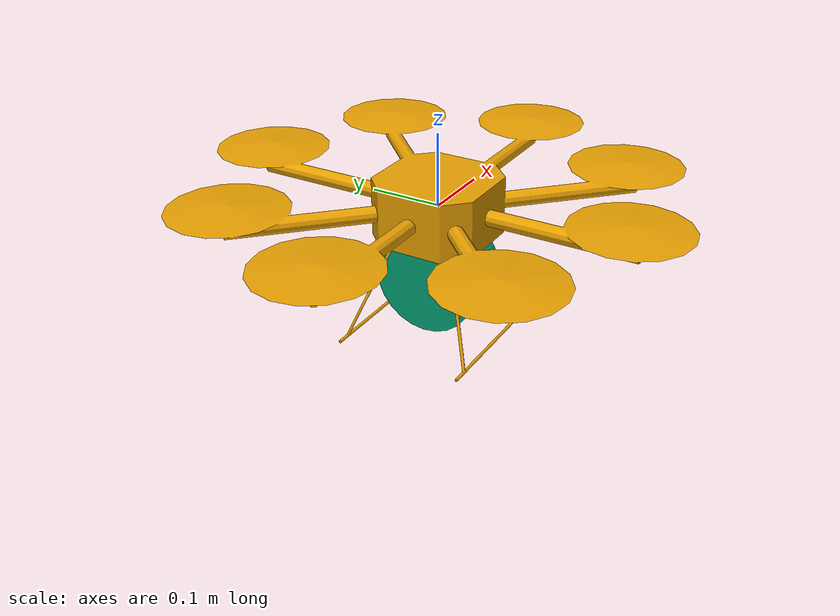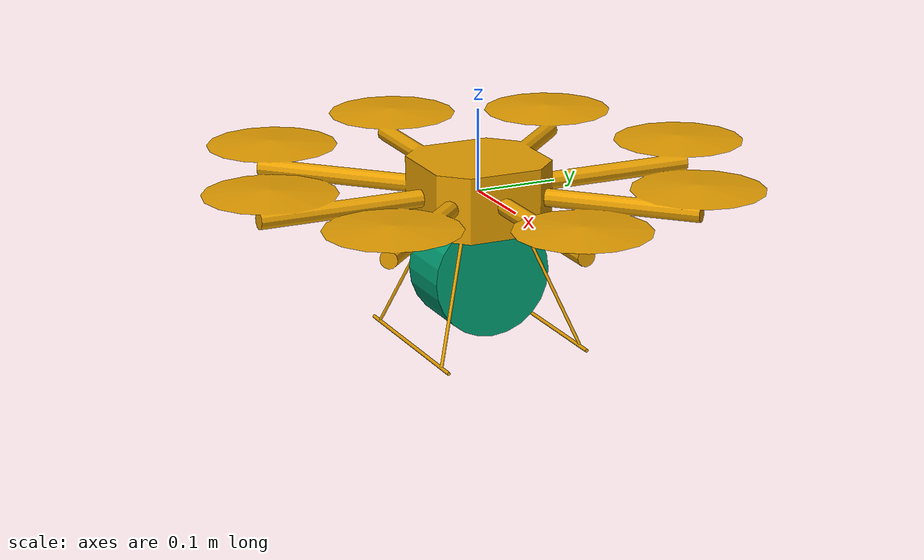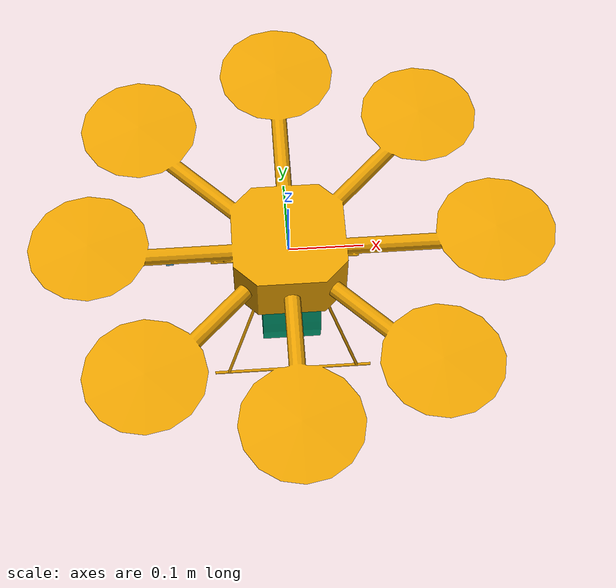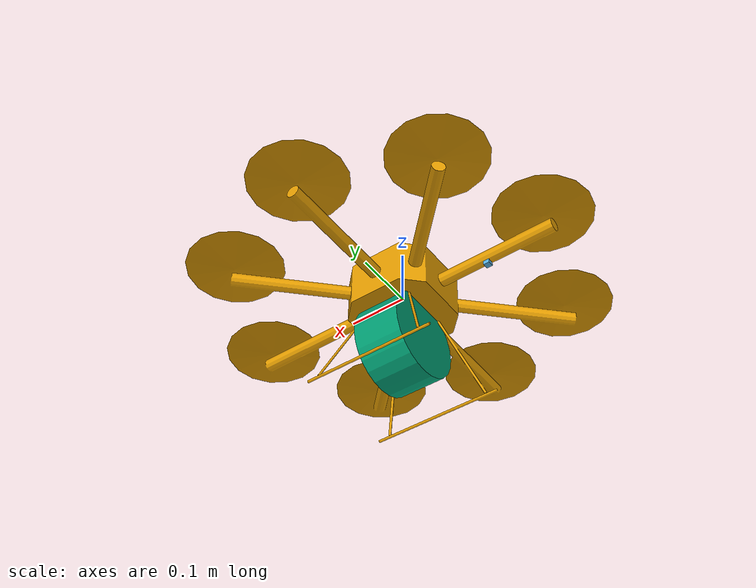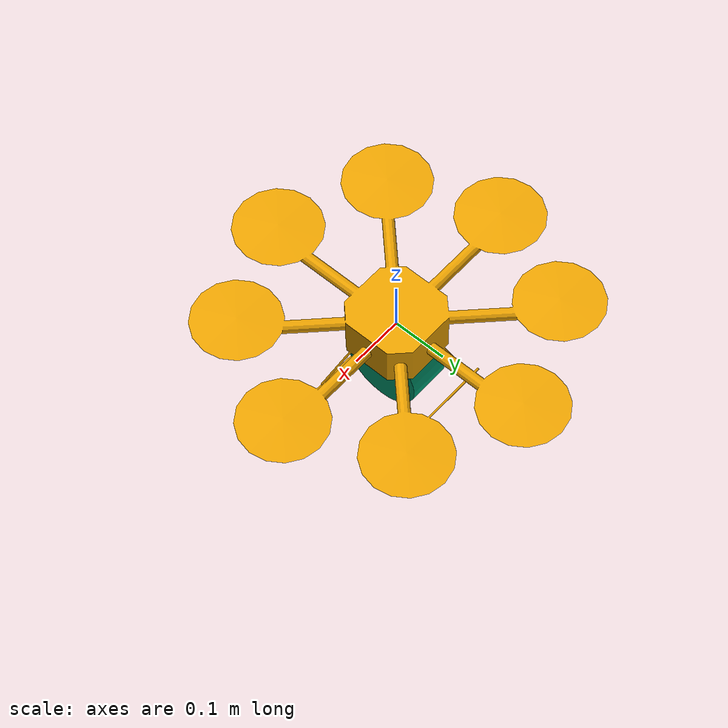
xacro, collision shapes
<?xml version="1.0"?>

<robot name="octorotor" xmlns:xacro="http://www.ros.org/wiki/xacro">

    <xacro:property name="M_PI" value="3.1415926535897931" />

    <!-- Included URDF Files -->
    <xacro:include filename="$(find hector_octorotor_description)/urdf/octorotor_base.urdf.xacro" />

    <!-- Instantiate octorotor_base_macro once (has no parameters atm) -->
    <xacro:octorotor_base_macro />

    <!-- Hokuyo UTM-30LX mounted upside down below the octorotor body -->
    <xacro:include filename="$(find hector_sensors_description)/urdf/hokuyo_utm30lx.urdf.xacro" />
    <xacro:hokuyo_utm30lx name="laser0" parent="base_link" ros_topic="scan" update_rate="40" ray_count="1081" min_angle="-135" max_angle="135">
      <origin xyz="0.0 0.0 -0.097" rpy="${M_PI} 0 0"/>
    </xacro:hokuyo_utm30lx>

    <!-- Forward facing camera -->
    <xacro:include filename="$(find hector_sensors_description)/urdf/generic_camera.urdf.xacro" />
    <xacro:generic_camera name="front_cam" parent="base_link" ros_topic="camera/image" cam_info_topic="camera/camera_info" update_rate="20" res_x="640" res_y="480" image_format="R8G8B8" hfov="90">
      <origin xyz="0.05 0.0 -0.06" rpy="0 0 0"/>
    </xacro:generic_camera>

</robot>

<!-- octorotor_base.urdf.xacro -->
<robot xmlns:xacro="http://www.ros.org/wiki/xacro">

  <xacro:include filename="$(find hector_sensors_description)/urdf/sonar_sensor.urdf.xacro" />

  <xacro:macro name="octorotor_dummy">
    <link name="dummy_link">
  		<origin xyz="0 0 0" rpy="0 0 0" />
  	</link>
  	<joint name="$dummy_joint" type="fixed">
      <xacro:insert_block name="origin" />
      <parent link="dummy_link"/>
      <child link="base_link"/>
    </joint>
  </xacro:macro>

  <!-- Main quadrotor link -->
  <xacro:macro name="octorotor_base_macro">
    <link name="base_link">
		  <inertial>
		    <mass value="1.477" />
		    <origin xyz="0 0 0" />
		    <inertia ixx="0.01152" ixy="0.0" ixz="0.0" iyy="0.01152" iyz="0.0" izz="0.0218" />
		  </inertial>

		  <visual>
		    <origin xyz="0 0 0" rpy="0 0 0" />
		    <geometry>
		      <mesh filename="package://hector_octorotor_description/meshes/octorotor/octorotor_base.dae"/>
		    </geometry>
		  </visual>

		  <collision>
		    <origin xyz="0 0 0" rpy="0 0 0" />
		    <geometry>
		      <mesh filename="package://hector_octorotor_description/meshes/octorotor/octorotor_base.stl"/>
		    </geometry>
		  </collision>
	</link>

    <!-- Sonar height sensor -->
    <xacro:sonar_sensor name="sonar" parent="base_link" ros_topic="sonar_height" update_rate="10" min_range="0.03" max_range="3.0" field_of_view="${40*pi/180}" ray_count="3">
      <origin xyz="-0.16 0.0 -0.012" rpy="0 ${90*pi/180} 0"/>
    </xacro:sonar_sensor>
  </xacro:macro>
</robot>

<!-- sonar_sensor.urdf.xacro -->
<robot xmlns:xacro="http://www.ros.org/wiki/xacro">
  <xacro:macro name="sonar_sensor" params="name parent *origin ros_topic update_rate min_range max_range field_of_view ray_count">
    <joint name="${name}_joint" type="fixed">
      <xacro:insert_block name="origin" />
      <parent link="${parent}"/>
      <child link="${name}_link"/>
    </joint>

    <link name="${name}_link">
      <inertial>
        <mass value="0.001" />
        <origin xyz="0 0 0" rpy="0 0 0" />
        <inertia ixx="0.000000017" ixy="0" ixz="0" iyy="0.000000017" iyz="0" izz="0.000000017" />
      </inertial>
      <visual>
        <origin xyz="0 0 0" rpy="0 0 0" />
        <geometry>
          <mesh filename="package://hector_sensors_description/meshes/sonar_sensor/max_sonar_ez4.dae"/>
        </geometry>
      </visual>
      <collision>
        <origin xyz="0 0 0" rpy="0 0 0" />
        <geometry>
          <box size="0.01 0.01 0.01" />
        </geometry>
      </collision>
    </link>

    <gazebo reference="${name}_link">
      <sensor type="ray" name="${name}">
        <always_on>true</always_on>
        <update_rate>${update_rate}</update_rate>
        <pose>0 0 0 0 0 0</pose>
        <visualize>false</visualize>
        <ray>
          <scan>
            <horizontal>
              <samples>${ray_count}</samples>
              <resolution>1</resolution>
              <min_angle>-${field_of_view/2}</min_angle>
              <max_angle> ${field_of_view/2}</max_angle>
            </horizontal>
            <vertical>
              <samples>${ray_count}</samples>
              <resolution>1</resolution>
              <min_angle>-${field_of_view/2}</min_angle>
              <max_angle> ${field_of_view/2}</max_angle>
            </vertical>
          </scan>
          <range>
            <min>${min_range}</min>
            <max>${max_range}</max>
            <resolution>0.01</resolution>
          </range>
        </ray>

        <plugin name="gazebo_ros_${name}_controller" filename="libhector_gazebo_ros_sonar.so">
          <gaussianNoise>0.005</gaussianNoise>
          <topicName>${ros_topic}</topicName>
          <frameId>${name}_link</frameId>
        </plugin>
      </sensor>
    </gazebo>
  </xacro:macro>
</robot>

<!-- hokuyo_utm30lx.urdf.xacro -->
<robot xmlns:xacro="http://ros.org/wiki/xacro">
    <xacro:property name="M_PI" value="3.1415926535897931" />

    <xacro:macro name="hokuyo_utm30lx_model" params="name parent *origin">
      <joint name="${name}_joint" type="fixed">
        <xacro:insert_block name="origin" />
        <parent link="${parent}"/>
        <child link="${name}_frame"/>
      </joint>

      <link name="${name}_frame">
        <inertial>
          <mass value="0.270" />
          <origin xyz="0 0 0" rpy="0 0 0" />
          <inertia ixx="2.632e-4" ixy="0" ixz="0" iyy="2.632e-4" iyz="0" izz="1.62e-4" />
        </inertial>
        <visual>
          <origin xyz="0 0 0" rpy="0 0 0" />
          <geometry>
          <mesh filename="package://hector_sensors_description/meshes/hokuyo_utm30lx/hokuyo_utm_30lx$(optenv TEST_SELF_FILTER).dae"/>
        </geometry>
        </visual>
        <collision>
          <origin xyz="0.00 0 0.0" rpy="0 ${0.5 * M_PI} 0" />
          <geometry>
	    <cylinder length="0.079" radius="0.0735"/>
        </geometry>
        </collision>
      </link>
    </xacro:macro>

    <xacro:macro name="hokuyo_utm30lx" params="name parent *origin ros_topic update_rate ray_count min_angle max_angle">
      <xacro:hokuyo_utm30lx_model name="${name}" parent="${parent}">
        <xacro:insert_block name="origin" />
      </xacro:hokuyo_utm30lx_model>

      <gazebo reference="${name}_frame">
        <sensor type="ray" name="${name}">
          <always_on>true</always_on>
          <update_rate>${update_rate}</update_rate>
          <pose>0 0 0 0 0 0</pose>
          <visualize>false</visualize>
          <ray>
            <scan>
              <horizontal>
                <samples>${ray_count}</samples>
                <resolution>1</resolution>
                <min_angle>${min_angle * M_PI/180}</min_angle>
                <max_angle>${max_angle * M_PI/180}</max_angle>
              </horizontal>
            </scan>
            <range>
              <min>0.2</min>
              <max>30.0</max>
              <resolution>0.01</resolution>
            </range>
            <noise>
              <type>gaussian</type>
              <mean>0.0</mean>
              <stddev>0.004</stddev>
            </noise>
          </ray>
          <plugin name="gazebo_ros_${name}_controller" filename="libgazebo_ros_laser.so">
            <gaussianNoise>0.005</gaussianNoise>
            <hokuyoMinIntensity>2000</hokuyoMinIntensity>
            <alwaysOn>true</alwaysOn>
	    <robotNamespace>$(arg robot_name)/sensor/</robotNamespace>
            <updateRate>${update_rate}</updateRate>
            <topicName>${ros_topic}</topicName>
            <frameName>${name}_frame</frameName>
          </plugin>
        </sensor>
      </gazebo>
    </xacro:macro>

    <xacro:macro name="hokuyo_utm30lx_gpu" params="name parent *origin ros_topic update_rate ray_count min_angle max_angle">
      <xacro:hokuyo_utm30lx_model name="${name}" parent="${parent}">
        <xacro:insert_block name="origin" />
      </xacro:hokuyo_utm30lx_model>

      <gazebo reference="${name}_frame">
        <sensor type="gpu_ray" name="${name}">
          <update_rate>${update_rate}</update_rate>
          <pose>0 0 0 0 0 0</pose>
          <visualize>false</visualize>
          <ray>
            <scan>
              <horizontal>
                <samples>${ray_count}</samples>
                <resolution>1</resolution>
                <min_angle>${min_angle * M_PI/180}</min_angle>
                <max_angle>${max_angle * M_PI/180}</max_angle>
              </horizontal>
            </scan>
            <range>
              <min>0.2</min>
              <max>30.0</max>
              <resolution>0.01</resolution>
            </range>
            <noise>
              <type>gaussian</type>
              <mean>0.0</mean>
              <stddev>0.004</stddev>
            </noise>
          </ray>
          <plugin name="gazebo_ros_${name}_controller" filename="libgazebo_ros_gpu_laser.so">
            <topicName>${ros_topic}</topicName>
            <frameName>${name}_frame</frameName>
          </plugin>
        </sensor>
      </gazebo>
    </xacro:macro>
</robot>

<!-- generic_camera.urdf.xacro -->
<robot xmlns:xacro="http://www.ros.org/wiki/xacro">
  <xacro:arg name="simulator" default="gazebo"/>
  <xacro:property name="M_PI" value="3.1415926535897931" />

  <xacro:macro name="generic_camera" params="name parent *origin ros_topic cam_info_topic update_rate res_x res_y image_format hfov">
    <joint name="${name}_joint" type="fixed">
      <xacro:insert_block name="origin" />
      <parent link="${parent}"/>
      <child link="${name}_link"/>
    </joint>

    <link name="${name}_link">
    </link>

    <joint name="${name}_optical_joint" type="fixed">
      <origin xyz="0 0 0" rpy="${-M_PI/2} 0.0 ${-M_PI/2}" />
      <parent link="${name}_link" />
      <child link="${name}_optical_frame"/>
    </joint>

    <link name="${name}_optical_frame"/>
    <gazebo reference="${name}_link">
      <sensor type="camera" name="${name}_camera_sensor">
        <update_rate>${update_rate}</update_rate>
        <camera>
          <horizontal_fov>${hfov * M_PI/180.0}</horizontal_fov>
          <image>
            <format>${image_format}</format>
            <width>${res_x}</width>
            <height>${res_y}</height>
          </image>
          <clip>
            <near>0.01</near>
            <far>100</far>
          </clip>
        </camera>

        <xacro:if value="${'$(arg simulator)' == 'gazebo'}">
          <plugin name="${name}_camera_controller" filename="libgazebo_ros_camera.so">
            <cameraName>${name}</cameraName>
            <imageTopicName>${ros_topic}</imageTopicName>
            <cameraInfoTopicName>${cam_info_topic}</cameraInfoTopicName>
            <frameName>${name}_optical_frame</frameName>
          </plugin>
        </xacro:if>
      </sensor>
    </gazebo>
  </xacro:macro>

</robot>
